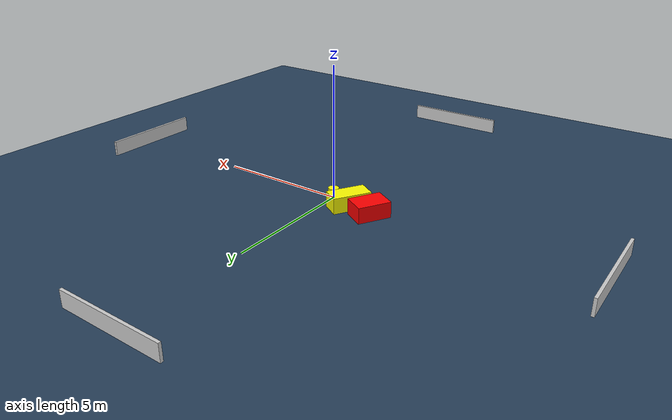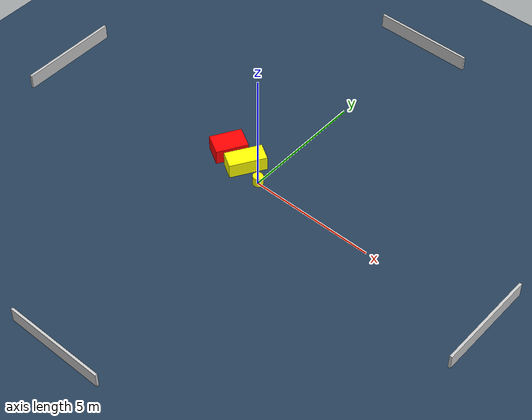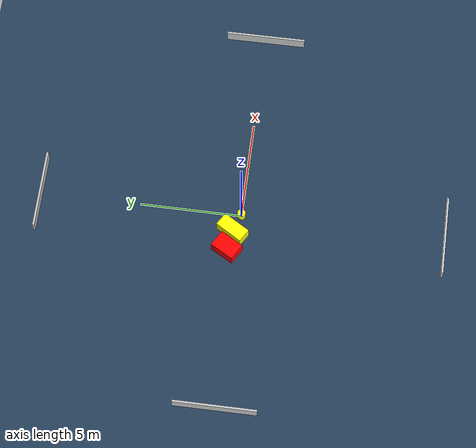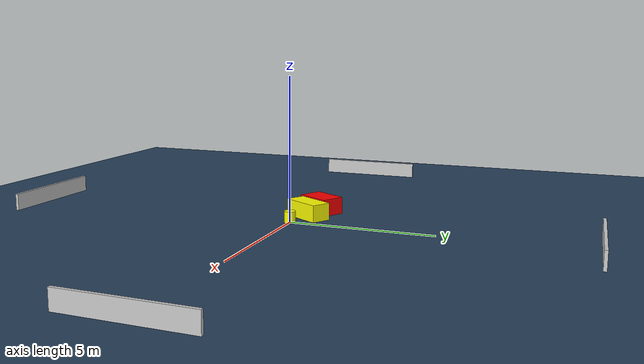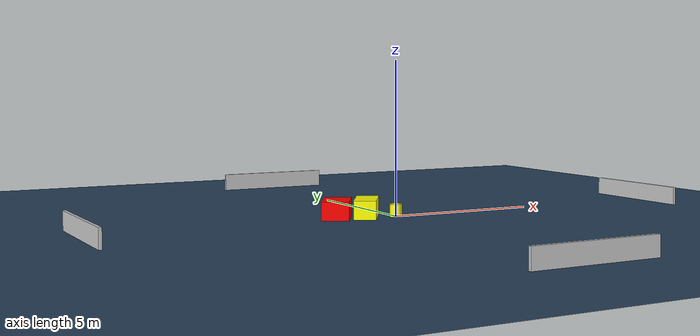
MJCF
<?xml version="1.0" ?>
<mujoco model="generated_environment">
  <option timestep="0.01" integrator="RK4" cone="elliptic"/>
  <default>
    <geom density="1"/>
  </default>
  <asset>
    <texture builtin="gradient" height="3072" name="skybox" rgb1="0.3 0.5 0.7" rgb2="0 0 0" type="skybox" width="512"/>
    <texture builtin="checker" height="300" name="groundplane" rgb1="0.2 0.3 0.4" rgb2="0.1 0.2 0.3" type="2d" width="300"/>
    <material name="groundplane" reflectance="0.2" texrepeat="5 5" texture="groundplane"/>
  </asset>
  <worldbody>
    <light dir="0 0 -1" directional="true" pos="0 0 1.5"/>
    <geom condim="3" friction="0.5 0.005 0.001" material="groundplane" name="floor" pos="0 0 0" size="0 0 0.05" type="plane"/>
    <body name="walls">
      <geom name="wall_1" condim="4" pos="-10.0 0.0 0.3" rgba="0.800000011920929 0.800000011920929 0.800000011920929 1.0" size="0.05 2.0 0.3" type="box"/>
      <geom name="wall_2" condim="4" pos="10.0 0.0 0.3" rgba="0.800000011920929 0.800000011920929 0.800000011920929 1.0" size="0.05 2.0 0.3" type="box"/>
      <geom name="wall_3" condim="4" pos="0.0 -10.0 0.3" rgba="0.800000011920929 0.800000011920929 0.800000011920929 1.0" size="2.0 0.05 0.3" type="box"/>
      <geom name="wall_4" condim="4" pos="0.0 10.0 0.3" rgba="0.800000011920929 0.800000011920929 0.800000011920929 1.0" size="2.0 0.05 0.3" type="box"/>
    </body>
    <body name="robot">
      <joint name="joint_x" type="slide" pos="0 0 0" axis="1 0 0"/>
      <joint name="joint_y" type="slide" pos="0 0 0" axis="0 1 0"/>
      <geom name="robot" type="cylinder" pos="0.0 0.0 0.2" size="0.2 0.2 0.0" mass="5.0" friction="1.0 0.005 0.0001" condim="4" rgba="1.0 1.0 0.0 1.0"/>
    </body>
    <body name="obstacle_1_movable">
      <geom name="obstacle_1_movable" condim="4" pos="-0.8987926519811582 0.32752296350067867 0.3" euler="0 0 328.5179757187831" friction="0.0 0.005 0.001" rgba="1.0 1.0 0.0 1.0" size="0.3565810685682016 0.7298282780765246 0.3" type="box" mass="0.1"/>
      <joint type="free"/>
    </body>
    <body name="obstacle_2_static">
      <geom name="obstacle_2_static" condim="4" pos="-1.8730624897123027 0.48544216628661363 0.3" euler="0 0 239.78057822547476" friction="0.0 0.005 0.001" rgba="1.0 0.0 0.0 1.0" size="0.6299178361860598 0.4351216877535354 0.3" type="box"/>
    </body>
  </worldbody>
  <actuator>
    <motor name="actuator_x" joint="joint_x" gear="1" ctrlrange="-1 1"/>
    <motor name="actuator_y" joint="joint_y" gear="1" ctrlrange="-1 1"/>
  </actuator>
</mujoco>
